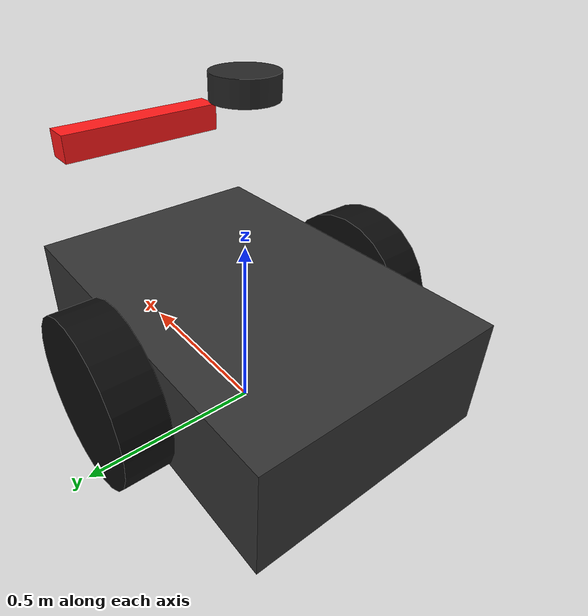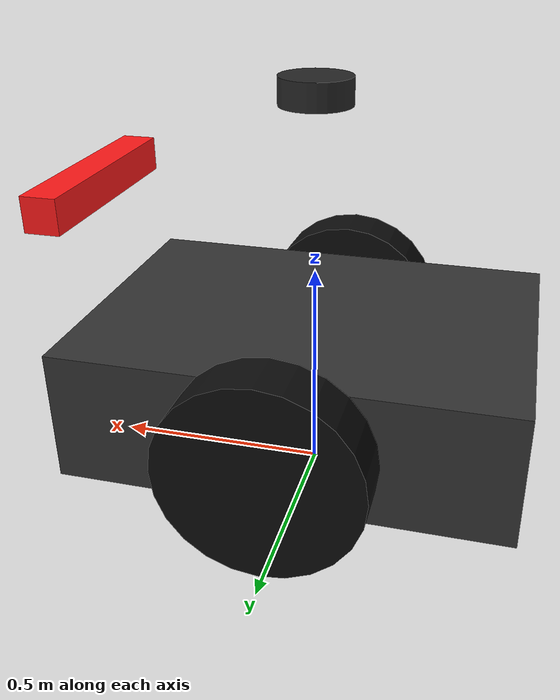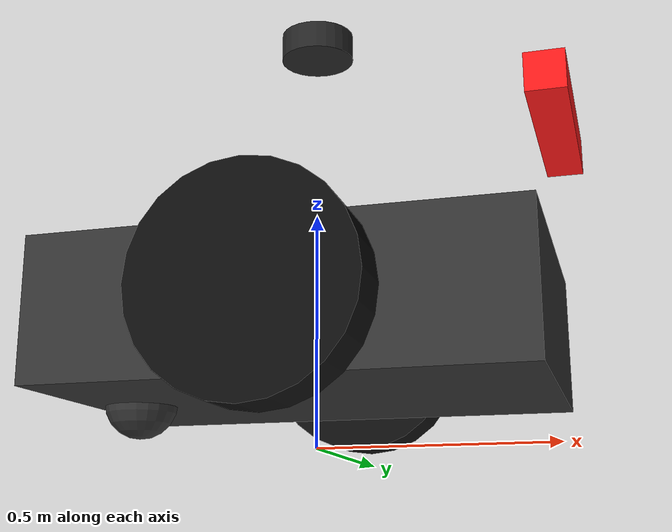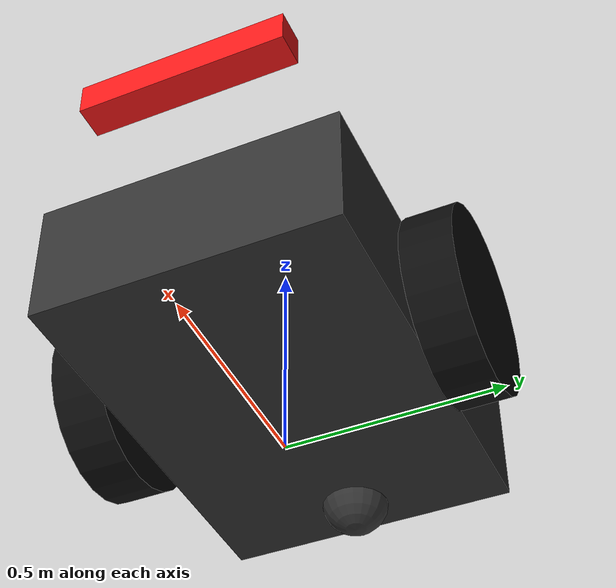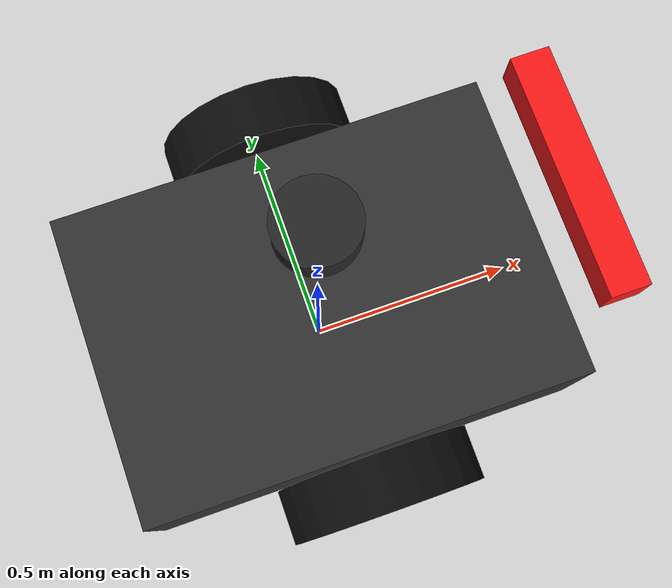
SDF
<?xml version="1.0"?>

<sdf version="1.9">

  <model name="simple_robot">

    <static>false</static>

    <!-- 机器人整体位置 -->
    <pose>0 0 0.25 0 0 0</pose>

    <!--                    机器人底盘                     -->

    <link name="base_link">

      <inertial>
        <pose>-0.02 0 0 0 0 0</pose>
        <mass>5.0</mass>

        <inertia>
          <ixx>0.5</ixx>
          <iyy>0.5</iyy>
          <izz>0.5</izz>
          <ixy>0</ixy>
          <ixz>0</ixz>
          <iyz>0</iyz>
        </inertia>
      </inertial>

      <collision name="collision">

        <geometry>
          <box>
            <size>1.0 0.7 0.3</size>
          </box>
        </geometry>

      </collision>

      <visual name="visual">

        <geometry>
          <box>
            <size>1.0 0.7 0.3</size>
          </box>
        </geometry>

        <material>
          <ambient>0.15 0.15 0.15 1</ambient>
          <diffuse>0.2 0.2 0.2 1</diffuse>
        </material>

      </visual>

    </link>

    <!-- 2D lidar mounted above the chassis -->
    <link name="lidar_link">
      <pose>0 0 0.65 0 0 0</pose>
      <inertial><mass>0.05</mass><inertia><ixx>0.0001</ixx><iyy>0.0001</iyy><izz>0.0001</izz><ixy>0</ixy><ixz>0</ixz><iyz>0</iyz></inertia></inertial>
      <collision name="collision"><geometry><cylinder><radius>0.08</radius><length>0.06</length></cylinder></geometry></collision>
      <visual name="visual"><geometry><cylinder><radius>0.08</radius><length>0.06</length></cylinder></geometry><material><ambient>0.1 0.1 0.1 1</ambient><diffuse>0.15 0.15 0.15 1</diffuse></material></visual>
      <sensor name="lidar" type="gpu_lidar">
        <topic>/scan</topic><update_rate>10</update_rate><always_on>true</always_on><visualize>true</visualize><gz_frame_id>lidar_link</gz_frame_id>
        <lidar><scan><horizontal><samples>720</samples><resolution>1</resolution><min_angle>-3.141592653589793</min_angle><max_angle>3.141592653589793</max_angle></horizontal></scan><range><min>0.10</min><max>10.0</max><resolution>0.01</resolution></range></lidar>
      </sensor>
    </link>
    <joint name="lidar_joint" type="fixed"><parent>base_link</parent><child>lidar_link</child></joint>

    <!--                      左轮                         -->
<link name="left_wheel">

  <pose>0 0.42 0 0 0 0</pose>

  <inertial>
    <mass>0.5</mass>
    <inertia>
      <ixx>0.02</ixx>
      <iyy>0.02</iyy>
      <izz>0.02</izz>
      <ixy>0</ixy>
      <ixz>0</ixz>
      <iyz>0</iyz>
    </inertia>
  </inertial>

  <collision name="collision">
    <pose>0 0 0 1.570796 0 0</pose>

    <geometry>
      <cylinder>
        <radius>0.22</radius>
        <length>0.002</length>
      </cylinder>
    </geometry>
    <surface>
      <friction>
        <ode>
          <mu>0.8</mu>
          <mu2>0.8</mu2>
        </ode>
      </friction>
    </surface>
  </collision>

  <visual name="visual">
    <pose>0 0 0 1.570796 0 0</pose>

    <geometry>
      <cylinder>
        <radius>0.22</radius>
        <length>0.12</length>
      </cylinder>
    </geometry>

    <material>
      <ambient>0.05 0.05 0.05 1</ambient>
      <diffuse>0.05 0.05 0.05 1</diffuse>
    </material>
  </visual>

</link>

    <!--                      右轮                         -->

<link name="right_wheel">

  <pose>0 -0.42 0 0 0 0</pose>

  <inertial>
    <mass>0.5</mass>
    <inertia>
      <ixx>0.02</ixx>
      <iyy>0.02</iyy>
      <izz>0.02</izz>
      <ixy>0</ixy>
      <ixz>0</ixz>
      <iyz>0</iyz>
    </inertia>
  </inertial>

  <collision name="collision">
    <pose>0 0 0 1.570796 0 0</pose>

    <geometry>
      <cylinder>
        <radius>0.22</radius>
        <length>0.002</length>
      </cylinder>
    </geometry>
    <surface>
      <friction>
        <ode>
          <mu>0.8</mu>
          <mu2>0.8</mu2>
        </ode>
      </friction>
    </surface>
  </collision>

  <visual name="visual">
    <pose>0 0 0 1.570796 0 0</pose>

    <geometry>
      <cylinder>
        <radius>0.22</radius>
        <length>0.12</length>
      </cylinder>
    </geometry>

    <material>
      <ambient>0.05 0.05 0.05 1</ambient>
      <diffuse>0.05 0.05 0.05 1</diffuse>
    </material>
  </visual>

</link>

    <!--                 后部被动球形支撑                  -->

    <link name="rear_caster">

      <pose>-0.40 0 -0.14 0 0 0</pose>

      <inertial>
        <mass>0.08</mass>
        <inertia>
          <ixx>0.000205</ixx>
          <iyy>0.000205</iyy>
          <izz>0.000205</izz>
          <ixy>0</ixy>
          <ixz>0</ixz>
          <iyz>0</iyz>
        </inertia>
      </inertial>

      <collision name="collision">
        <geometry>
          <sphere>
            <radius>0.08</radius>
          </sphere>
        </geometry>
        <surface>
          <friction>
            <ode>
              <mu>0.2</mu>
              <mu2>0.2</mu2>
            </ode>
          </friction>
        </surface>
      </collision>

      <visual name="visual">
        <geometry>
          <sphere>
            <radius>0.08</radius>
          </sphere>
        </geometry>
        <material>
          <ambient>0.15 0.15 0.15 1</ambient>
          <diffuse>0.2 0.2 0.2 1</diffuse>
        </material>
      </visual>

    </link>

    <joint name="rear_caster_joint" type="ball">
      <parent>base_link</parent>
      <child>rear_caster</child>
    </joint>

    <!--                    左轮关节                       -->

    <joint name="left_wheel_joint"
           type="revolute">

      <parent>base_link</parent>
      <child>left_wheel</child>

      <axis>

        <!-- 轮子绕 Y 轴旋转 -->
        <xyz>0 1 0</xyz>

        <dynamics>
          <damping>0.1</damping>
          <friction>0.0</friction>
        </dynamics>

      </axis>

    </joint>

    <!--                    右轮关节                       -->

    <joint name="right_wheel_joint"
           type="revolute">

      <parent>base_link</parent>
      <child>right_wheel</child>

      <axis>

        <!-- 轮子绕 Y 轴旋转 -->
        <xyz>0 1 0</xyz>

        <dynamics>
          <damping>0.1</damping>
          <friction>0.0</friction>
        </dynamics>

      </axis>

    </joint>

    <!--                     前方标记                      -->

    <link name="front_marker">

      <pose>0.52 0 0.42 0 0 0</pose>

      <visual name="visual">

        <geometry>

          <box>
            <size>0.08 0.5 0.08</size>
          </box>

        </geometry>

        <material>

          <ambient>0.8 0.1 0.1 1</ambient>
          <diffuse>1.0 0.1 0.1 1</diffuse>

        </material>

      </visual>

    </link>

    <!--                  Gazebo 差速驱动                  -->

    <plugin
      filename="gz-sim-diff-drive-system"
      name="gz::sim::systems::DiffDrive">

      <left_joint>left_wheel_joint</left_joint>

      <right_joint>right_wheel_joint</right_joint>

      <wheel_separation>0.84</wheel_separation>

      <wheel_radius>0.22</wheel_radius>

      <max_linear_velocity>1.0</max_linear_velocity>

      <max_angular_velocity>2.0</max_angular_velocity>

      <topic>/cmd_vel</topic>

      <odom_topic>/odom</odom_topic>

      <tf_topic>/tf</tf_topic>

      <frame_id>odom</frame_id>

      <child_frame_id>base_link</child_frame_id>

    </plugin>

  </model>

</sdf>
